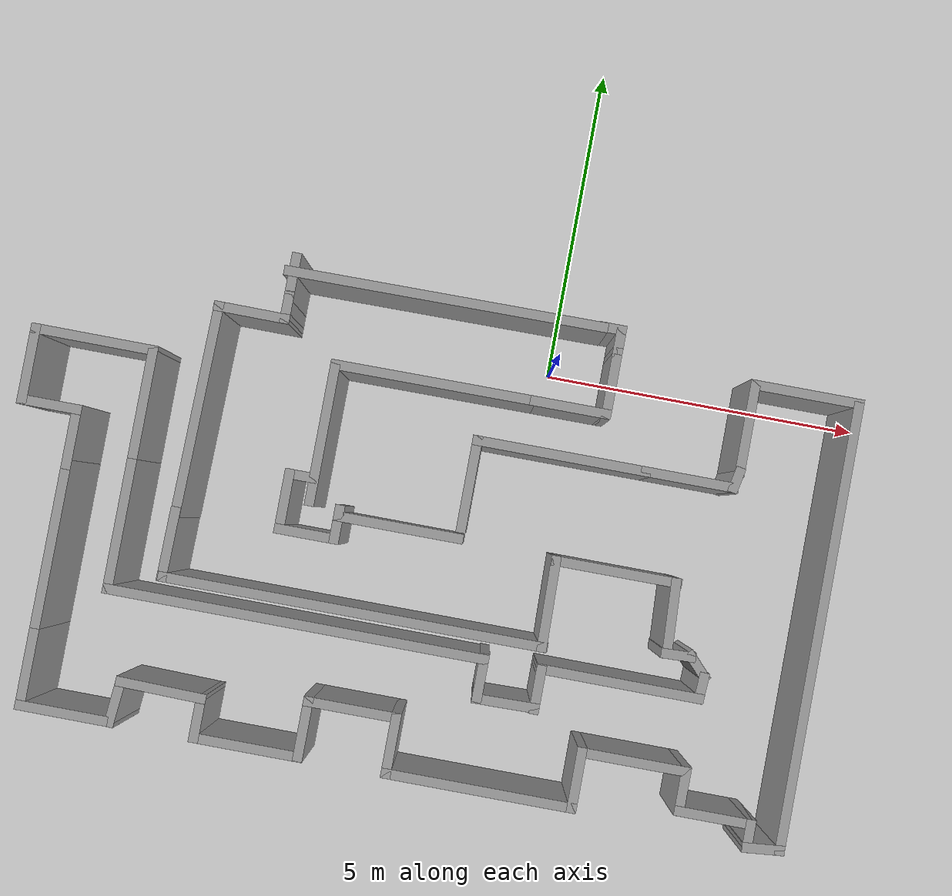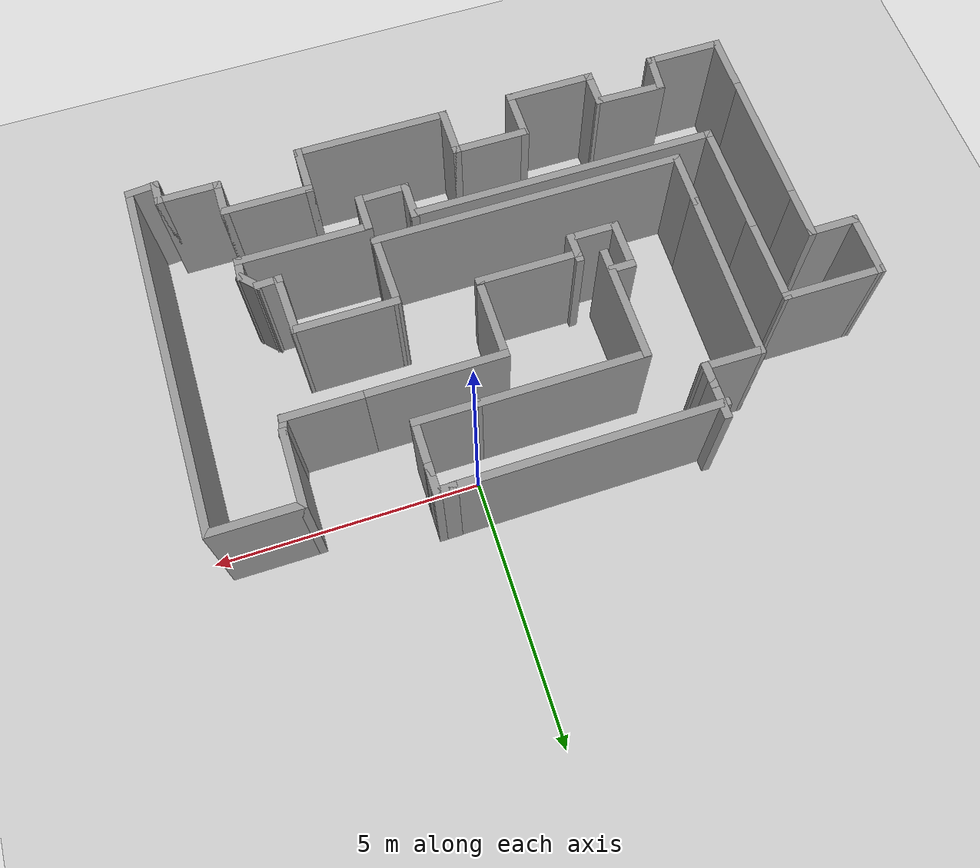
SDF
<?xml version="1.0"?>
<sdf version="1.5">
  <world name="default">
    <!-- A global light source -->
    <include>
      <uri>model://sun</uri>
    </include>
    <!-- A ground plane -->
    <include>
      <uri>model://ground_plane</uri>
    </include>

    <model name='Labyrinth'>
      <pose frame=''>-1.59153 -2.84142 0 0 -0 0</pose>
      <link name='Wall_0'>
        <collision name='Wall_0_Collision'>
          <geometry>
            <box>
              <size>1.25 0.15 2.5</size>
            </box>
          </geometry>
          <pose frame=''>0 0 1.25 0 -0 0</pose>
        </collision>
        <visual name='Wall_0_Visual'>
          <pose frame=''>0 0 1.25 0 -0 0</pose>
          <geometry>
            <box>
              <size>1.25 0.15 2.5</size>
            </box>
          </geometry>
          <material>
            <script>
              <uri>file://media/materials/scripts/gazebo.material</uri>
              <name>Gazebo/Grey</name>
            </script>
            <ambient>1 1 1 1</ambient>
          </material>
        </visual>
        <pose frame=''>1.95595 2.28277 0 0 -0 0</pose>
      </link>
      <link name='Wall_1'>
        <collision name='Wall_1_Collision'>
          <geometry>
            <box>
              <size>1 0.15 2.5</size>
            </box>
          </geometry>
          <pose frame=''>0 0 1.25 0 -0 0</pose>
        </collision>
        <visual name='Wall_1_Visual'>
          <pose frame=''>0 0 1.25 0 -0 0</pose>
          <geometry>
            <box>
              <size>1 0.15 2.5</size>
            </box>
          </geometry>
          <material>
            <script>
              <uri>file://media/materials/scripts/gazebo.material</uri>
              <name>Gazebo/Grey</name>
            </script>
            <ambient>1 1 1 1</ambient>
          </material>
        </visual>
        <pose frame=''>2.50595 2.70777 0 0 -0 1.5708</pose>
      </link>
      <link name='Wall_102'>
        <collision name='Wall_102_Collision'>
          <geometry>
            <box>
              <size>3.34002 0.15 2.5</size>
            </box>
          </geometry>
          <pose frame=''>0 0 1.25 0 -0 0</pose>
        </collision>
        <visual name='Wall_102_Visual'>
          <pose frame=''>0 0 1.25 0 -0 0</pose>
          <geometry>
            <box>
              <size>3.34002 0.15 2.5</size>
            </box>
          </geometry>
          <material>
            <script>
              <uri>file://media/materials/scripts/gazebo.material</uri>
              <name>Gazebo/Grey</name>
            </script>
            <ambient>1 1 1 1</ambient>
          </material>
        </visual>
        <pose frame=''>-3.61574 1.2323 0 0 -0 1.55168</pose>
      </link>
      <link name='Wall_105'>
        <collision name='Wall_105_Collision'>
          <geometry>
            <box>
              <size>0.75 0.15 2.5</size>
            </box>
          </geometry>
          <pose frame=''>0 0 1.25 0 -0 0</pose>
        </collision>
        <visual name='Wall_105_Visual'>
          <pose frame=''>0 0 1.25 0 -0 0</pose>
          <geometry>
            <box>
              <size>0.75 0.15 2.5</size>
            </box>
          </geometry>
          <material>
            <script>
              <uri>file://media/materials/scripts/gazebo.material</uri>
              <name>Gazebo/Grey</name>
            </script>
            <ambient>1 1 1 1</ambient>
          </material>
        </visual>
        <pose frame=''>-2.56458 3.47044 0 0 -0 1.5708</pose>
      </link>
      <link name='Wall_13'>
        <collision name='Wall_13_Collision'>
          <geometry>
            <box>
              <size>3.23375 0.15 2.5</size>
            </box>
          </geometry>
          <pose frame=''>0 0 1.25 0 -0 0</pose>
        </collision>
        <visual name='Wall_13_Visual'>
          <pose frame=''>0 0 1.25 0 -0 0</pose>
          <geometry>
            <box>
              <size>3.23375 0.15 2.5</size>
            </box>
          </geometry>
          <material>
            <script>
              <uri>file://media/materials/scripts/gazebo.material</uri>
              <name>Gazebo/Grey</name>
            </script>
            <ambient>1 1 1 1</ambient>
          </material>
        </visual>
        <pose frame=''>-0.135921 2.2788 0 0 0 -3.13902</pose>
      </link>
      <link name='Wall_14'>
        <collision name='Wall_14_Collision'>
          <geometry>
            <box>
              <size>2.25 0.15 2.5</size>
            </box>
          </geometry>
          <pose frame=''>0 0 1.25 0 -0 0</pose>
        </collision>
        <visual name='Wall_14_Visual'>
          <pose frame=''>0 0 1.25 0 -0 0</pose>
          <geometry>
            <box>
              <size>2.25 0.15 2.5</size>
            </box>
          </geometry>
          <material>
            <script>
              <uri>file://media/materials/scripts/gazebo.material</uri>
              <name>Gazebo/Grey</name>
            </script>
            <ambient>1 1 1 1</ambient>
          </material>
        </visual>
        <pose frame=''>-1.67779 1.21613 0 0 0 -1.5708</pose>
      </link>
      <link name='Wall_17'>
        <collision name='Wall_17_Collision'>
          <geometry>
            <box>
              <size>1.5 0.15 2.5</size>
            </box>
          </geometry>
          <pose frame=''>0 0 1.25 0 -0 0</pose>
        </collision>
        <visual name='Wall_17_Visual'>
          <pose frame=''>0 0 1.25 0 -0 0</pose>
          <geometry>
            <box>
              <size>1.5 0.15 2.5</size>
            </box>
          </geometry>
          <material>
            <script>
              <uri>file://media/materials/scripts/gazebo.material</uri>
              <name>Gazebo/Grey</name>
            </script>
            <ambient>1 1 1 1</ambient>
          </material>
        </visual>
        <pose frame=''>4.65595 2.45777 0 0 -0 1.5708</pose>
      </link>
      <link name='Wall_18'>
        <collision name='Wall_18_Collision'>
          <geometry>
            <box>
              <size>1.75 0.15 2.5</size>
            </box>
          </geometry>
          <pose frame=''>0 0 1.25 0 -0 0</pose>
        </collision>
        <visual name='Wall_18_Visual'>
          <pose frame=''>0 0 1.25 0 -0 0</pose>
          <geometry>
            <box>
              <size>1.75 0.15 2.5</size>
            </box>
          </geometry>
          <material>
            <script>
              <uri>file://media/materials/scripts/gazebo.material</uri>
              <name>Gazebo/Grey</name>
            </script>
            <ambient>1 1 1 1</ambient>
          </material>
        </visual>
        <pose frame=''>5.45595 3.13277 0 0 -0 0</pose>
      </link>
      <link name='Wall_2'>
        <collision name='Wall_2_Collision'>
          <geometry>
            <box>
              <size>0.25 0.15 2.5</size>
            </box>
          </geometry>
          <pose frame=''>0 0 1.25 0 -0 0</pose>
        </collision>
        <visual name='Wall_2_Visual'>
          <pose frame=''>0 0 1.25 0 -0 0</pose>
          <geometry>
            <box>
              <size>0.25 0.15 2.5</size>
            </box>
          </geometry>
          <material>
            <script>
              <uri>file://media/materials/scripts/gazebo.material</uri>
              <name>Gazebo/Grey</name>
            </script>
            <ambient>1 1 1 1</ambient>
          </material>
        </visual>
        <pose frame=''>2.50595 3.18277 0 0 -0 1.5708</pose>
      </link>
      <link name='Wall_20'>
        <collision name='Wall_20_Collision'>
          <geometry>
            <box>
              <size>7 0.15 2.5</size>
            </box>
          </geometry>
          <pose frame=''>0 0 1.25 0 -0 0</pose>
        </collision>
        <visual name='Wall_20_Visual'>
          <pose frame=''>0 0 1.25 0 -0 0</pose>
          <geometry>
            <box>
              <size>7 0.15 2.5</size>
            </box>
          </geometry>
          <material>
            <script>
              <uri>file://media/materials/scripts/gazebo.material</uri>
              <name>Gazebo/Grey</name>
            </script>
            <ambient>1 1 1 1</ambient>
          </material>
        </visual>
        <pose frame=''>6.25595 -0.292234 0 0 0 -1.5708</pose>
      </link>
      <link name='Wall_24'>
        <collision name='Wall_24_Collision'>
          <geometry>
            <box>
              <size>0.476204 0.15 2.5</size>
            </box>
          </geometry>
          <pose frame=''>0 0 1.25 0 -0 0</pose>
        </collision>
        <visual name='Wall_24_Visual'>
          <pose frame=''>0 0 1.25 0 -0 0</pose>
          <geometry>
            <box>
              <size>0.476204 0.15 2.5</size>
            </box>
          </geometry>
          <material>
            <script>
              <uri>file://media/materials/scripts/gazebo.material</uri>
              <name>Gazebo/Grey</name>
            </script>
            <ambient>1 1 1 1</ambient>
          </material>
        </visual>
        <pose frame=''>4.6647 -1.53437 0 0 0 -1.62444</pose>
      </link>
      <link name='Wall_26'>
        <collision name='Wall_26_Collision'>
          <geometry>
            <box>
              <size>2.23 0.15 2.5</size>
            </box>
          </geometry>
          <pose frame=''>0 0 1.25 0 -0 0</pose>
        </collision>
        <visual name='Wall_26_Visual'>
          <pose frame=''>0 0 1.25 0 -0 0</pose>
          <geometry>
            <box>
              <size>2.23 0.15 2.5</size>
            </box>
          </geometry>
          <material>
            <script>
              <uri>file://media/materials/scripts/gazebo.material</uri>
              <name>Gazebo/Grey</name>
            </script>
            <ambient>1 1 1 1</ambient>
          </material>
        </visual>
        <pose frame=''>-4.44405 -0.657234 0 0 -0 1.5708</pose>
      </link>
      <link name='Wall_27'>
        <collision name='Wall_27_Collision'>
          <geometry>
            <box>
              <size>1.75 0.15 2.5</size>
            </box>
          </geometry>
          <pose frame=''>0 0 1.25 0 -0 0</pose>
        </collision>
        <visual name='Wall_27_Visual'>
          <pose frame=''>0 0 1.25 0 -0 0</pose>
          <geometry>
            <box>
              <size>1.75 0.15 2.5</size>
            </box>
          </geometry>
          <material>
            <script>
              <uri>file://media/materials/scripts/gazebo.material</uri>
              <name>Gazebo/Grey</name>
            </script>
            <ambient>1 1 1 1</ambient>
          </material>
        </visual>
        <pose frame=''>-4.44405 1.18277 0 0 -0 1.5708</pose>
      </link>
      <link name='Wall_28'>
        <collision name='Wall_28_Collision'>
          <geometry>
            <box>
              <size>1.96833 0.15 2.5</size>
            </box>
          </geometry>
          <pose frame=''>0 0 1.25 0 -0 0</pose>
        </collision>
        <visual name='Wall_28_Visual'>
          <pose frame=''>0 0 1.25 0 -0 0</pose>
          <geometry>
            <box>
              <size>1.96833 0.15 2.5</size>
            </box>
          </geometry>
          <material>
            <script>
              <uri>file://media/materials/scripts/gazebo.material</uri>
              <name>Gazebo/Grey</name>
            </script>
            <ambient>1 1 1 1</ambient>
          </material>
        </visual>
        <pose frame=''>-5.35321 1.9861 0 0 -0 3.13792</pose>
      </link>
      <link name='Wall_3'>
        <collision name='Wall_3_Collision'>
          <geometry>
            <box>
              <size>0.5 0.15 2.5</size>
            </box>
          </geometry>
          <pose frame=''>0 0 1.25 0 -0 0</pose>
        </collision>
        <visual name='Wall_3_Visual'>
          <pose frame=''>0 0 1.25 0 -0 0</pose>
          <geometry>
            <box>
              <size>0.5 0.15 2.5</size>
            </box>
          </geometry>
          <material>
            <script>
              <uri>file://media/materials/scripts/gazebo.material</uri>
              <name>Gazebo/Grey</name>
            </script>
            <ambient>1 1 1 1</ambient>
          </material>
        </visual>
        <pose frame=''>2.50595 3.40777 0 0 -0 1.5708</pose>
      </link>
      <link name='Wall_34'>
        <collision name='Wall_34_Collision'>
          <geometry>
            <box>
              <size>1.5 0.15 2.5</size>
            </box>
          </geometry>
          <pose frame=''>0 0 1.25 0 -0 0</pose>
        </collision>
        <visual name='Wall_34_Visual'>
          <pose frame=''>0 0 1.25 0 -0 0</pose>
          <geometry>
            <box>
              <size>1.5 0.15 2.5</size>
            </box>
          </geometry>
          <material>
            <script>
              <uri>file://media/materials/scripts/gazebo.material</uri>
              <name>Gazebo/Grey</name>
            </script>
            <ambient>1 1 1 1</ambient>
          </material>
        </visual>
        <pose frame=''>0.655951 0.857766 0 0 -0 1.5708</pose>
      </link>
      <link name='Wall_35'>
        <collision name='Wall_35_Collision'>
          <geometry>
            <box>
              <size>2.75 0.15 2.5</size>
            </box>
          </geometry>
          <pose frame=''>0 0 1.25 0 -0 0</pose>
        </collision>
        <visual name='Wall_35_Visual'>
          <pose frame=''>0 0 1.25 0 -0 0</pose>
          <geometry>
            <box>
              <size>2.75 0.15 2.5</size>
            </box>
          </geometry>
          <material>
            <script>
              <uri>file://media/materials/scripts/gazebo.material</uri>
              <name>Gazebo/Grey</name>
            </script>
            <ambient>1 1 1 1</ambient>
          </material>
        </visual>
        <pose frame=''>1.95595 1.53277 0 0 -0 0</pose>
      </link>
      <link name='Wall_36'>
        <collision name='Wall_36_Collision'>
          <geometry>
            <box>
              <size>1.5 0.15 2.5</size>
            </box>
          </geometry>
          <pose frame=''>0 0 1.25 0 -0 0</pose>
        </collision>
        <visual name='Wall_36_Visual'>
          <pose frame=''>0 0 1.25 0 -0 0</pose>
          <geometry>
            <box>
              <size>1.5 0.15 2.5</size>
            </box>
          </geometry>
          <material>
            <script>
              <uri>file://media/materials/scripts/gazebo.material</uri>
              <name>Gazebo/Grey</name>
            </script>
            <ambient>1 1 1 1</ambient>
          </material>
        </visual>
        <pose frame=''>3.93095 1.53277 0 0 -0 0</pose>
      </link>
      <link name='Wall_38'>
        <collision name='Wall_38_Collision'>
          <geometry>
            <box>
              <size>0.404951 0.15 2.5</size>
            </box>
          </geometry>
          <pose frame=''>0 0 1.25 0 -0 0</pose>
        </collision>
        <visual name='Wall_38_Visual'>
          <pose frame=''>0 0 1.25 0 -0 0</pose>
          <geometry>
            <box>
              <size>0.404951 0.15 2.5</size>
            </box>
          </geometry>
          <material>
            <script>
              <uri>file://media/materials/scripts/gazebo.material</uri>
              <name>Gazebo/Grey</name>
            </script>
            <ambient>1 1 1 1</ambient>
          </material>
        </visual>
        <pose frame=''>4.63095 1.65777 0 0 0 -1.76819</pose>
      </link>
      <link name='Wall_4'>
        <collision name='Wall_4_Collision'>
          <geometry>
            <box>
              <size>0.433486 0.15 2.5</size>
            </box>
          </geometry>
          <pose frame=''>0 0 1.25 0 -0 0</pose>
        </collision>
        <visual name='Wall_4_Visual'>
          <pose frame=''>0 0 1.25 0 -0 0</pose>
          <geometry>
            <box>
              <size>0.433486 0.15 2.5</size>
            </box>
          </geometry>
          <material>
            <script>
              <uri>file://media/materials/scripts/gazebo.material</uri>
              <name>Gazebo/Grey</name>
            </script>
            <ambient>1 1 1 1</ambient>
          </material>
        </visual>
        <pose frame=''>2.36455 3.58277 0 0 -0 3.14159</pose>
      </link>
      <link name='Wall_40'>
        <collision name='Wall_40_Collision'>
          <geometry>
            <box>
              <size>6 0.15 2.5</size>
            </box>
          </geometry>
          <pose frame=''>0 0 1.25 0 -0 0</pose>
        </collision>
        <visual name='Wall_40_Visual'>
          <pose frame=''>0 0 1.25 0 -0 0</pose>
          <geometry>
            <box>
              <size>6 0.15 2.5</size>
            </box>
          </geometry>
          <material>
            <script>
              <uri>file://media/materials/scripts/gazebo.material</uri>
              <name>Gazebo/Grey</name>
            </script>
            <ambient>1 1 1 1</ambient>
          </material>
        </visual>
        <pose frame=''>-0.730649 -1.36723 0 0 -0 0</pose>
      </link>
      <link name='Wall_41'>
        <collision name='Wall_41_Collision'>
          <geometry>
            <box>
              <size>1.47381 0.15 2.5</size>
            </box>
          </geometry>
          <pose frame=''>0 0 1.25 0 -0 0</pose>
        </collision>
        <visual name='Wall_41_Visual'>
          <pose frame=''>0 0 1.25 0 -0 0</pose>
          <geometry>
            <box>
              <size>1.47381 0.15 2.5</size>
            </box>
          </geometry>
          <material>
            <script>
              <uri>file://media/materials/scripts/gazebo.material</uri>
              <name>Gazebo/Grey</name>
            </script>
            <ambient>1 1 1 1</ambient>
          </material>
        </visual>
        <pose frame=''>2.1679 -0.705459 0 0 -0 1.59078</pose>
      </link>
      <link name='Wall_42'>
        <collision name='Wall_42_Collision'>
          <geometry>
            <box>
              <size>2 0.15 2.5</size>
            </box>
          </geometry>
          <pose frame=''>0 0 1.25 0 -0 0</pose>
        </collision>
        <visual name='Wall_42_Visual'>
          <pose frame=''>0 0 1.25 0 -0 0</pose>
          <geometry>
            <box>
              <size>2 0.15 2.5</size>
            </box>
          </geometry>
          <material>
            <script>
              <uri>file://media/materials/scripts/gazebo.material</uri>
              <name>Gazebo/Grey</name>
            </script>
            <ambient>1 1 1 1</ambient>
          </material>
        </visual>
        <pose frame=''>3.0929 -0.043684 0 0 -0 0</pose>
      </link>
      <link name='Wall_43'>
        <collision name='Wall_43_Collision'>
          <geometry>
            <box>
              <size>1.22428 0.15 2.5</size>
            </box>
          </geometry>
          <pose frame=''>0 0 1.25 0 -0 0</pose>
        </collision>
        <visual name='Wall_43_Visual'>
          <pose frame=''>0 0 1.25 0 -0 0</pose>
          <geometry>
            <box>
              <size>1.22428 0.15 2.5</size>
            </box>
          </geometry>
          <material>
            <script>
              <uri>file://media/materials/scripts/gazebo.material</uri>
              <name>Gazebo/Grey</name>
            </script>
            <ambient>1 1 1 1</ambient>
          </material>
        </visual>
        <pose frame=''>4.03113 -0.580459 0 0 0 -1.52156</pose>
      </link>
      <link name='Wall_44'>
        <collision name='Wall_44_Collision'>
          <geometry>
            <box>
              <size>0.531633 0.15 2.5</size>
            </box>
          </geometry>
          <pose frame=''>0 0 1.25 0 -0 0</pose>
        </collision>
        <visual name='Wall_44_Visual'>
          <pose frame=''>0 0 1.25 0 -0 0</pose>
          <geometry>
            <box>
              <size>0.531633 0.15 2.5</size>
            </box>
          </geometry>
          <material>
            <script>
              <uri>file://media/materials/scripts/gazebo.material</uri>
              <name>Gazebo/Grey</name>
            </script>
            <ambient>1 1 1 1</ambient>
          </material>
        </visual>
        <pose frame=''>4.23471 -1.11062 0 0 -0 0.034723</pose>
      </link>
      <link name='Wall_45'>
        <collision name='Wall_45_Collision'>
          <geometry>
            <box>
              <size>0.515022 0.15 2.5</size>
            </box>
          </geometry>
          <pose frame=''>0 0 1.25 0 -0 0</pose>
        </collision>
        <visual name='Wall_45_Visual'>
          <pose frame=''>0 0 1.25 0 -0 0</pose>
          <geometry>
            <box>
              <size>0.515022 0.15 2.5</size>
            </box>
          </geometry>
          <material>
            <script>
              <uri>file://media/materials/scripts/gazebo.material</uri>
              <name>Gazebo/Grey</name>
            </script>
            <ambient>1 1 1 1</ambient>
          </material>
        </visual>
        <pose frame=''>4.54925 -1.22453 0 0 0 -0.822436</pose>
      </link>
      <link name='Wall_49'>
        <collision name='Wall_49_Collision'>
          <geometry>
            <box>
              <size>0.752354 0.15 2.5</size>
            </box>
          </geometry>
          <pose frame=''>0 0 1.25 0 -0 0</pose>
        </collision>
        <visual name='Wall_49_Visual'>
          <pose frame=''>0 0 1.25 0 -0 0</pose>
          <geometry>
            <box>
              <size>0.752354 0.15 2.5</size>
            </box>
          </geometry>
          <material>
            <script>
              <uri>file://media/materials/scripts/gazebo.material</uri>
              <name>Gazebo/Grey</name>
            </script>
            <ambient>1 1 1 1</ambient>
          </material>
        </visual>
        <pose frame=''>-4.00944 -3.36376 0 0 -0 1.48236</pose>
      </link>
      <link name='Wall_5'>
        <collision name='Wall_5_Collision'>
          <geometry>
            <box>
              <size>5.01155 0.15 2.5</size>
            </box>
          </geometry>
          <pose frame=''>0 0 1.25 0 -0 0</pose>
        </collision>
        <visual name='Wall_5_Visual'>
          <pose frame=''>0 0 1.25 0 -0 0</pose>
          <geometry>
            <box>
              <size>5.01155 0.15 2.5</size>
            </box>
          </geometry>
          <material>
            <script>
              <uri>file://media/materials/scripts/gazebo.material</uri>
              <name>Gazebo/Grey</name>
            </script>
            <ambient>1 1 1 1</ambient>
          </material>
        </visual>
        <pose frame=''>-0.207598 3.56469 0 0 0 -3.13686</pose>
      </link>
      <link name='Wall_50'>
        <collision name='Wall_50_Collision'>
          <geometry>
            <box>
              <size>1.39388 0.15 2.5</size>
            </box>
          </geometry>
          <pose frame=''>0 0 1.25 0 -0 0</pose>
        </collision>
        <visual name='Wall_50_Visual'>
          <pose frame=''>0 0 1.25 0 -0 0</pose>
          <geometry>
            <box>
              <size>1.39388 0.15 2.5</size>
            </box>
          </geometry>
          <material>
            <script>
              <uri>file://media/materials/scripts/gazebo.material</uri>
              <name>Gazebo/Grey</name>
            </script>
            <ambient>1 1 1 1</ambient>
          </material>
        </visual>
        <pose frame=''>-3.36104 -3.05046 0 0 0 -0.021386</pose>
      </link>
      <link name='Wall_53'>
        <collision name='Wall_53_Collision'>
          <geometry>
            <box>
              <size>0.75 0.15 2.5</size>
            </box>
          </geometry>
          <pose frame=''>0 0 1.25 0 -0 0</pose>
        </collision>
        <visual name='Wall_53_Visual'>
          <pose frame=''>0 0 1.25 0 -0 0</pose>
          <geometry>
            <box>
              <size>0.75 0.15 2.5</size>
            </box>
          </geometry>
          <material>
            <script>
              <uri>file://media/materials/scripts/gazebo.material</uri>
              <name>Gazebo/Grey</name>
            </script>
            <ambient>1 1 1 1</ambient>
          </material>
        </visual>
        <pose frame=''>-2.73924 -3.36376 0 0 0 -1.5708</pose>
      </link>
      <link name='Wall_54'>
        <collision name='Wall_54_Collision'>
          <geometry>
            <box>
              <size>1.75 0.15 2.5</size>
            </box>
          </geometry>
          <pose frame=''>0 0 1.25 0 -0 0</pose>
        </collision>
        <visual name='Wall_54_Visual'>
          <pose frame=''>0 0 1.25 0 -0 0</pose>
          <geometry>
            <box>
              <size>1.75 0.15 2.5</size>
            </box>
          </geometry>
          <material>
            <script>
              <uri>file://media/materials/scripts/gazebo.material</uri>
              <name>Gazebo/Grey</name>
            </script>
            <ambient>1 1 1 1</ambient>
          </material>
        </visual>
        <pose frame=''>-1.93924 -3.66376 0 0 -0 0</pose>
      </link>
      <link name='Wall_55'>
        <collision name='Wall_55_Collision'>
          <geometry>
            <box>
              <size>1 0.15 2.5</size>
            </box>
          </geometry>
          <pose frame=''>0 0 1.25 0 -0 0</pose>
        </collision>
        <visual name='Wall_55_Visual'>
          <pose frame=''>0 0 1.25 0 -0 0</pose>
          <geometry>
            <box>
              <size>1 0.15 2.5</size>
            </box>
          </geometry>
          <material>
            <script>
              <uri>file://media/materials/scripts/gazebo.material</uri>
              <name>Gazebo/Grey</name>
            </script>
            <ambient>1 1 1 1</ambient>
          </material>
        </visual>
        <pose frame=''>-1.13924 -3.23876 0 0 -0 1.5708</pose>
      </link>
      <link name='Wall_56'>
        <collision name='Wall_56_Collision'>
          <geometry>
            <box>
              <size>1.5 0.15 2.5</size>
            </box>
          </geometry>
          <pose frame=''>0 0 1.25 0 -0 0</pose>
        </collision>
        <visual name='Wall_56_Visual'>
          <pose frame=''>0 0 1.25 0 -0 0</pose>
          <geometry>
            <box>
              <size>1.5 0.15 2.5</size>
            </box>
          </geometry>
          <material>
            <script>
              <uri>file://media/materials/scripts/gazebo.material</uri>
              <name>Gazebo/Grey</name>
            </script>
            <ambient>1 1 1 1</ambient>
          </material>
        </visual>
        <pose frame=''>-0.464238 -2.81376 0 0 -0 0</pose>
      </link>
      <link name='Wall_57'>
        <collision name='Wall_57_Collision'>
          <geometry>
            <box>
              <size>1 0.15 2.5</size>
            </box>
          </geometry>
          <pose frame=''>0 0 1.25 0 -0 0</pose>
        </collision>
        <visual name='Wall_57_Visual'>
          <pose frame=''>0 0 1.25 0 -0 0</pose>
          <geometry>
            <box>
              <size>1 0.15 2.5</size>
            </box>
          </geometry>
          <material>
            <script>
              <uri>file://media/materials/scripts/gazebo.material</uri>
              <name>Gazebo/Grey</name>
            </script>
            <ambient>1 1 1 1</ambient>
          </material>
        </visual>
        <pose frame=''>0.210762 -3.23876 0 0 0 -1.5708</pose>
      </link>
      <link name='Wall_58'>
        <collision name='Wall_58_Collision'>
          <geometry>
            <box>
              <size>3 0.15 2.5</size>
            </box>
          </geometry>
          <pose frame=''>0 0 1.25 0 -0 0</pose>
        </collision>
        <visual name='Wall_58_Visual'>
          <pose frame=''>0 0 1.25 0 -0 0</pose>
          <geometry>
            <box>
              <size>3 0.15 2.5</size>
            </box>
          </geometry>
          <material>
            <script>
              <uri>file://media/materials/scripts/gazebo.material</uri>
              <name>Gazebo/Grey</name>
            </script>
            <ambient>1 1 1 1</ambient>
          </material>
        </visual>
        <pose frame=''>1.63576 -3.66376 0 0 -0 0</pose>
      </link>
      <link name='Wall_59'>
        <collision name='Wall_59_Collision'>
          <geometry>
            <box>
              <size>1 0.15 2.5</size>
            </box>
          </geometry>
          <pose frame=''>0 0 1.25 0 -0 0</pose>
        </collision>
        <visual name='Wall_59_Visual'>
          <pose frame=''>0 0 1.25 0 -0 0</pose>
          <geometry>
            <box>
              <size>1 0.15 2.5</size>
            </box>
          </geometry>
          <material>
            <script>
              <uri>file://media/materials/scripts/gazebo.material</uri>
              <name>Gazebo/Grey</name>
            </script>
            <ambient>1 1 1 1</ambient>
          </material>
        </visual>
        <pose frame=''>3.06076 -3.23876 0 0 -0 1.5708</pose>
      </link>
      <link name='Wall_60'>
        <collision name='Wall_60_Collision'>
          <geometry>
            <box>
              <size>1.75 0.15 2.5</size>
            </box>
          </geometry>
          <pose frame=''>0 0 1.25 0 -0 0</pose>
        </collision>
        <visual name='Wall_60_Visual'>
          <pose frame=''>0 0 1.25 0 -0 0</pose>
          <geometry>
            <box>
              <size>1.75 0.15 2.5</size>
            </box>
          </geometry>
          <material>
            <script>
              <uri>file://media/materials/scripts/gazebo.material</uri>
              <name>Gazebo/Grey</name>
            </script>
            <ambient>1 1 1 1</ambient>
          </material>
        </visual>
        <pose frame=''>3.86076 -2.81376 0 0 -0 0</pose>
      </link>
      <link name='Wall_61'>
        <collision name='Wall_61_Collision'>
          <geometry>
            <box>
              <size>0.75 0.15 2.5</size>
            </box>
          </geometry>
          <pose frame=''>0 0 1.25 0 -0 0</pose>
        </collision>
        <visual name='Wall_61_Visual'>
          <pose frame=''>0 0 1.25 0 -0 0</pose>
          <geometry>
            <box>
              <size>0.75 0.15 2.5</size>
            </box>
          </geometry>
          <material>
            <script>
              <uri>file://media/materials/scripts/gazebo.material</uri>
              <name>Gazebo/Grey</name>
            </script>
            <ambient>1 1 1 1</ambient>
          </material>
        </visual>
        <pose frame=''>4.66076 -3.11376 0 0 0 -1.5708</pose>
      </link>
      <link name='Wall_62'>
        <collision name='Wall_62_Collision'>
          <geometry>
            <box>
              <size>1.25 0.15 2.5</size>
            </box>
          </geometry>
          <pose frame=''>0 0 1.25 0 -0 0</pose>
        </collision>
        <visual name='Wall_62_Visual'>
          <pose frame=''>0 0 1.25 0 -0 0</pose>
          <geometry>
            <box>
              <size>1.25 0.15 2.5</size>
            </box>
          </geometry>
          <material>
            <script>
              <uri>file://media/materials/scripts/gazebo.material</uri>
              <name>Gazebo/Grey</name>
            </script>
            <ambient>1 1 1 1</ambient>
          </material>
        </visual>
        <pose frame=''>5.21076 -3.41376 0 0 -0 0</pose>
      </link>
      <link name='Wall_63'>
        <collision name='Wall_63_Collision'>
          <geometry>
            <box>
              <size>0.5 0.15 2.5</size>
            </box>
          </geometry>
          <pose frame=''>0 0 1.25 0 -0 0</pose>
        </collision>
        <visual name='Wall_63_Visual'>
          <pose frame=''>0 0 1.25 0 -0 0</pose>
          <geometry>
            <box>
              <size>0.5 0.15 2.5</size>
            </box>
          </geometry>
          <material>
            <script>
              <uri>file://media/materials/scripts/gazebo.material</uri>
              <name>Gazebo/Grey</name>
            </script>
            <ambient>1 1 1 1</ambient>
          </material>
        </visual>
        <pose frame=''>5.76076 -3.58876 0 0 0 -1.5708</pose>
      </link>
      <link name='Wall_64'>
        <collision name='Wall_64_Collision'>
          <geometry>
            <box>
              <size>0.64737 0.15 2.5</size>
            </box>
          </geometry>
          <pose frame=''>0 0 1.25 0 -0 0</pose>
        </collision>
        <visual name='Wall_64_Visual'>
          <pose frame=''>0 0 1.25 0 -0 0</pose>
          <geometry>
            <box>
              <size>0.64737 0.15 2.5</size>
            </box>
          </geometry>
          <material>
            <script>
              <uri>file://media/materials/scripts/gazebo.material</uri>
              <name>Gazebo/Grey</name>
            </script>
            <ambient>1 1 1 1</ambient>
          </material>
        </visual>
        <pose frame=''>6.00836 -3.7405 0 0 -0 0.093677</pose>
      </link>
      <link name='Wall_66'>
        <collision name='Wall_66_Collision'>
          <geometry>
            <box>
              <size>0.75 0.15 2.5</size>
            </box>
          </geometry>
          <pose frame=''>0 0 1.25 0 -0 0</pose>
        </collision>
        <visual name='Wall_66_Visual'>
          <pose frame=''>0 0 1.25 0 -0 0</pose>
          <geometry>
            <box>
              <size>0.75 0.15 2.5</size>
            </box>
          </geometry>
          <material>
            <script>
              <uri>file://media/materials/scripts/gazebo.material</uri>
              <name>Gazebo/Grey</name>
            </script>
            <ambient>1 1 1 1</ambient>
          </material>
        </visual>
        <pose frame=''>1.35609 -1.99138 0 0 0 -1.5708</pose>
      </link>
      <link name='Wall_67'>
        <collision name='Wall_67_Collision'>
          <geometry>
            <box>
              <size>1.03013 0.15 2.5</size>
            </box>
          </geometry>
          <pose frame=''>0 0 1.25 0 -0 0</pose>
        </collision>
        <visual name='Wall_67_Visual'>
          <pose frame=''>0 0 1.25 0 -0 0</pose>
          <geometry>
            <box>
              <size>1.03013 0.15 2.5</size>
            </box>
          </geometry>
          <material>
            <script>
              <uri>file://media/materials/scripts/gazebo.material</uri>
              <name>Gazebo/Grey</name>
            </script>
            <ambient>1 1 1 1</ambient>
          </material>
        </visual>
        <pose frame=''>1.79609 -2.29898 0 0 -0 0.017281</pose>
      </link>
      <link name='Wall_68'>
        <collision name='Wall_68_Collision'>
          <geometry>
            <box>
              <size>0.75 0.15 2.5</size>
            </box>
          </geometry>
          <pose frame=''>0 0 1.25 0 -0 0</pose>
        </collision>
        <visual name='Wall_68_Visual'>
          <pose frame=''>0 0 1.25 0 -0 0</pose>
          <geometry>
            <box>
              <size>0.75 0.15 2.5</size>
            </box>
          </geometry>
          <material>
            <script>
              <uri>file://media/materials/scripts/gazebo.material</uri>
              <name>Gazebo/Grey</name>
            </script>
            <ambient>1 1 1 1</ambient>
          </material>
        </visual>
        <pose frame=''>2.23609 -2.00659 0 0 -0 1.5708</pose>
      </link>
      <link name='Wall_7'>
        <collision name='Wall_7_Collision'>
          <geometry>
            <box>
              <size>1.15487 0.15 2.5</size>
            </box>
          </geometry>
          <pose frame=''>0 0 1.25 0 -0 0</pose>
        </collision>
        <visual name='Wall_7_Visual'>
          <pose frame=''>0 0 1.25 0 -0 0</pose>
          <geometry>
            <box>
              <size>1.15487 0.15 2.5</size>
            </box>
          </geometry>
          <material>
            <script>
              <uri>file://media/materials/scripts/gazebo.material</uri>
              <name>Gazebo/Grey</name>
            </script>
            <ambient>1 1 1 1</ambient>
          </material>
        </visual>
        <pose frame=''>-3.66084 -0.864826 0 0 0 -1.58679</pose>
      </link>
      <link name='Wall_70'>
        <collision name='Wall_70_Collision'>
          <geometry>
            <box>
              <size>5.95057 0.15 2.5</size>
            </box>
          </geometry>
          <pose frame=''>0 0 1.25 0 -0 0</pose>
        </collision>
        <visual name='Wall_70_Visual'>
          <pose frame=''>0 0 1.25 0 -0 0</pose>
          <geometry>
            <box>
              <size>5.95057 0.15 2.5</size>
            </box>
          </geometry>
          <material>
            <script>
              <uri>file://media/materials/scripts/gazebo.material</uri>
              <name>Gazebo/Grey</name>
            </script>
            <ambient>1 1 1 1</ambient>
          </material>
        </visual>
        <pose frame=''>-1.54398 -1.70191 0 0 0 -0.001613</pose>
      </link>
      <link name='Wall_72'>
        <collision name='Wall_72_Collision'>
          <geometry>
            <box>
              <size>2.56986 0.15 2.5</size>
            </box>
          </geometry>
          <pose frame=''>0 0 1.25 0 -0 0</pose>
        </collision>
        <visual name='Wall_72_Visual'>
          <pose frame=''>0 0 1.25 0 -0 0</pose>
          <geometry>
            <box>
              <size>2.56986 0.15 2.5</size>
            </box>
          </geometry>
          <material>
            <script>
              <uri>file://media/materials/scripts/gazebo.material</uri>
              <name>Gazebo/Grey</name>
            </script>
            <ambient>1 1 1 1</ambient>
          </material>
        </visual>
        <pose frame=''>3.44602 -1.69431 0 0 0 -0.002419</pose>
      </link>
      <link name='Wall_77'>
        <collision name='Wall_77_Collision'>
          <geometry>
            <box>
              <size>1.25 0.15 2.5</size>
            </box>
          </geometry>
          <pose frame=''>0 0 1.25 0 -0 0</pose>
        </collision>
        <visual name='Wall_77_Visual'>
          <pose frame=''>0 0 1.25 0 -0 0</pose>
          <geometry>
            <box>
              <size>1.25 0.15 2.5</size>
            </box>
          </geometry>
          <material>
            <script>
              <uri>file://media/materials/scripts/gazebo.material</uri>
              <name>Gazebo/Grey</name>
            </script>
            <ambient>1 1 1 1</ambient>
          </material>
        </visual>
        <pose frame=''>-6.26236 1.43944 0 0 0 -1.5708</pose>
      </link>
      <link name='Wall_78'>
        <collision name='Wall_78_Collision'>
          <geometry>
            <box>
              <size>1 0.15 2.5</size>
            </box>
          </geometry>
          <pose frame=''>0 0 1.25 0 -0 0</pose>
        </collision>
        <visual name='Wall_78_Visual'>
          <pose frame=''>0 0 1.25 0 -0 0</pose>
          <geometry>
            <box>
              <size>1 0.15 2.5</size>
            </box>
          </geometry>
          <material>
            <script>
              <uri>file://media/materials/scripts/gazebo.material</uri>
              <name>Gazebo/Grey</name>
            </script>
            <ambient>1 1 1 1</ambient>
          </material>
        </visual>
        <pose frame=''>-5.83736 0.889442 0 0 -0 0</pose>
      </link>
      <link name='Wall_79'>
        <collision name='Wall_79_Collision'>
          <geometry>
            <box>
              <size>1 0.15 2.5</size>
            </box>
          </geometry>
          <pose frame=''>0 0 1.25 0 -0 0</pose>
        </collision>
        <visual name='Wall_79_Visual'>
          <pose frame=''>0 0 1.25 0 -0 0</pose>
          <geometry>
            <box>
              <size>1 0.15 2.5</size>
            </box>
          </geometry>
          <material>
            <script>
              <uri>file://media/materials/scripts/gazebo.material</uri>
              <name>Gazebo/Grey</name>
            </script>
            <ambient>1 1 1 1</ambient>
          </material>
        </visual>
        <pose frame=''>-5.41236 0.464442 0 0 0 -1.5708</pose>
      </link>
      <link name='Wall_80'>
        <collision name='Wall_80_Collision'>
          <geometry>
            <box>
              <size>2.75 0.15 2.5</size>
            </box>
          </geometry>
          <pose frame=''>0 0 1.25 0 -0 0</pose>
        </collision>
        <visual name='Wall_80_Visual'>
          <pose frame=''>0 0 1.25 0 -0 0</pose>
          <geometry>
            <box>
              <size>2.75 0.15 2.5</size>
            </box>
          </geometry>
          <material>
            <script>
              <uri>file://media/materials/scripts/gazebo.material</uri>
              <name>Gazebo/Grey</name>
            </script>
            <ambient>1 1 1 1</ambient>
          </material>
        </visual>
        <pose frame=''>-5.41236 -1.26056 0 0 0 -1.5708</pose>
      </link>
      <link name='Wall_81'>
        <collision name='Wall_81_Collision'>
          <geometry>
            <box>
              <size>1.25 0.15 2.5</size>
            </box>
          </geometry>
          <pose frame=''>0 0 1.25 0 -0 0</pose>
        </collision>
        <visual name='Wall_81_Visual'>
          <pose frame=''>0 0 1.25 0 -0 0</pose>
          <geometry>
            <box>
              <size>1.25 0.15 2.5</size>
            </box>
          </geometry>
          <material>
            <script>
              <uri>file://media/materials/scripts/gazebo.material</uri>
              <name>Gazebo/Grey</name>
            </script>
            <ambient>1 1 1 1</ambient>
          </material>
        </visual>
        <pose frame=''>-5.41236 -3.11056 0 0 0 -1.5708</pose>
      </link>
      <link name='Wall_83'>
        <collision name='Wall_83_Collision'>
          <geometry>
            <box>
              <size>1.52633 0.15 2.5</size>
            </box>
          </geometry>
          <pose frame=''>0 0 1.25 0 -0 0</pose>
        </collision>
        <visual name='Wall_83_Visual'>
          <pose frame=''>0 0 1.25 0 -0 0</pose>
          <geometry>
            <box>
              <size>1.52633 0.15 2.5</size>
            </box>
          </geometry>
          <material>
            <script>
              <uri>file://media/materials/scripts/gazebo.material</uri>
              <name>Gazebo/Grey</name>
            </script>
            <ambient>1 1 1 1</ambient>
          </material>
        </visual>
        <pose frame=''>-4.7242 -3.66216 0 0 0 -0.002325</pose>
      </link>
      <link name='Wall_87'>
        <collision name='Wall_87_Collision'>
          <geometry>
            <box>
              <size>0.5 0.15 2.5</size>
            </box>
          </geometry>
          <pose frame=''>0 0 1.25 0 -0 0</pose>
        </collision>
        <visual name='Wall_87_Visual'>
          <pose frame=''>0 0 1.25 0 -0 0</pose>
          <geometry>
            <box>
              <size>0.5 0.15 2.5</size>
            </box>
          </geometry>
          <material>
            <script>
              <uri>file://media/materials/scripts/gazebo.material</uri>
              <name>Gazebo/Grey</name>
            </script>
            <ambient>1 1 1 1</ambient>
          </material>
        </visual>
        <pose frame=''>-1.88241 0.517389 0 0 -0 3.14159</pose>
      </link>
      <link name='Wall_88'>
        <collision name='Wall_88_Collision'>
          <geometry>
            <box>
              <size>1 0.15 2.5</size>
            </box>
          </geometry>
          <pose frame=''>0 0 1.25 0 -0 0</pose>
        </collision>
        <visual name='Wall_88_Visual'>
          <pose frame=''>0 0 1.25 0 -0 0</pose>
          <geometry>
            <box>
              <size>1 0.15 2.5</size>
            </box>
          </geometry>
          <material>
            <script>
              <uri>file://media/materials/scripts/gazebo.material</uri>
              <name>Gazebo/Grey</name>
            </script>
            <ambient>1 1 1 1</ambient>
          </material>
        </visual>
        <pose frame=''>-2.05741 0.092388 0 0 0 -1.5708</pose>
      </link>
      <link name='Wall_89'>
        <collision name='Wall_89_Collision'>
          <geometry>
            <box>
              <size>1 0.15 2.5</size>
            </box>
          </geometry>
          <pose frame=''>0 0 1.25 0 -0 0</pose>
        </collision>
        <visual name='Wall_89_Visual'>
          <pose frame=''>0 0 1.25 0 -0 0</pose>
          <geometry>
            <box>
              <size>1 0.15 2.5</size>
            </box>
          </geometry>
          <material>
            <script>
              <uri>file://media/materials/scripts/gazebo.material</uri>
              <name>Gazebo/Grey</name>
            </script>
            <ambient>1 1 1 1</ambient>
          </material>
        </visual>
        <pose frame=''>-1.63241 -0.332612 0 0 -0 0</pose>
      </link>
      <link name='Wall_90'>
        <collision name='Wall_90_Collision'>
          <geometry>
            <box>
              <size>0.5 0.15 2.5</size>
            </box>
          </geometry>
          <pose frame=''>0 0 1.25 0 -0 0</pose>
        </collision>
        <visual name='Wall_90_Visual'>
          <pose frame=''>0 0 1.25 0 -0 0</pose>
          <geometry>
            <box>
              <size>0.5 0.15 2.5</size>
            </box>
          </geometry>
          <material>
            <script>
              <uri>file://media/materials/scripts/gazebo.material</uri>
              <name>Gazebo/Grey</name>
            </script>
            <ambient>1 1 1 1</ambient>
          </material>
        </visual>
        <pose frame=''>-1.20741 -0.157612 0 0 -0 1.5708</pose>
      </link>
      <link name='Wall_91'>
        <collision name='Wall_91_Collision'>
          <geometry>
            <box>
              <size>0.25 0.15 2.5</size>
            </box>
          </geometry>
          <pose frame=''>0 0 1.25 0 -0 0</pose>
        </collision>
        <visual name='Wall_91_Visual'>
          <pose frame=''>0 0 1.25 0 -0 0</pose>
          <geometry>
            <box>
              <size>0.25 0.15 2.5</size>
            </box>
          </geometry>
          <material>
            <script>
              <uri>file://media/materials/scripts/gazebo.material</uri>
              <name>Gazebo/Grey</name>
            </script>
            <ambient>1 1 1 1</ambient>
          </material>
        </visual>
        <pose frame=''>-1.20741 0.067389 0 0 -0 1.5708</pose>
      </link>
      <link name='Wall_94'>
        <collision name='Wall_94_Collision'>
          <geometry>
            <box>
              <size>2 0.15 2.5</size>
            </box>
          </geometry>
          <pose frame=''>0 0 1.25 0 -0 0</pose>
        </collision>
        <visual name='Wall_94_Visual'>
          <pose frame=''>0 0 1.25 0 -0 0</pose>
          <geometry>
            <box>
              <size>2 0.15 2.5</size>
            </box>
          </geometry>
          <material>
            <script>
              <uri>file://media/materials/scripts/gazebo.material</uri>
              <name>Gazebo/Grey</name>
            </script>
            <ambient>1 1 1 1</ambient>
          </material>
        </visual>
        <pose frame=''>-0.282409 0.017389 0 0 -0 0</pose>
      </link>
      <link name='Wall_95'>
        <collision name='Wall_95_Collision'>
          <geometry>
            <box>
              <size>0.15 0.15 2.5</size>
            </box>
          </geometry>
          <pose frame=''>0 0 1.25 0 -0 0</pose>
        </collision>
        <visual name='Wall_95_Visual'>
          <pose frame=''>0 0 1.25 0 -0 0</pose>
          <geometry>
            <box>
              <size>0.15 0.15 2.5</size>
            </box>
          </geometry>
          <material>
            <script>
              <uri>file://media/materials/scripts/gazebo.material</uri>
              <name>Gazebo/Grey</name>
            </script>
            <ambient>1 1 1 1</ambient>
          </material>
        </visual>
        <pose frame=''>0.642591 0.017389 0 0 -0 0</pose>
      </link>
      <link name='Wall_97'>
        <collision name='Wall_97_Collision'>
          <geometry>
            <box>
              <size>1.17743 0.15 2.5</size>
            </box>
          </geometry>
          <pose frame=''>0 0 1.25 0 -0 0</pose>
        </collision>
        <visual name='Wall_97_Visual'>
          <pose frame=''>0 0 1.25 0 -0 0</pose>
          <geometry>
            <box>
              <size>1.17743 0.15 2.5</size>
            </box>
          </geometry>
          <material>
            <script>
              <uri>file://media/materials/scripts/gazebo.material</uri>
              <name>Gazebo/Grey</name>
            </script>
            <ambient>1 1 1 1</ambient>
          </material>
        </visual>
        <pose frame=''>-3.0782 2.82373 0 0 0 -0.006401</pose>
      </link>
      <link name='Wall_98'>
        <collision name='Wall_98_Collision'>
          <geometry>
            <box>
              <size>0.5 0.15 2.5</size>
            </box>
          </geometry>
          <pose frame=''>0 0 1.25 0 -0 0</pose>
        </collision>
        <visual name='Wall_98_Visual'>
          <pose frame=''>0 0 1.25 0 -0 0</pose>
          <geometry>
            <box>
              <size>0.5 0.15 2.5</size>
            </box>
          </geometry>
          <material>
            <script>
              <uri>file://media/materials/scripts/gazebo.material</uri>
              <name>Gazebo/Grey</name>
            </script>
            <ambient>1 1 1 1</ambient>
          </material>
        </visual>
        <pose frame=''>-2.56458 3.00202 0 0 -0 1.5708</pose>
      </link>
      <link name='Wall_99'>
        <collision name='Wall_99_Collision'>
          <geometry>
            <box>
              <size>0.15 0.15 2.5</size>
            </box>
          </geometry>
          <pose frame=''>0 0 1.25 0 -0 0</pose>
        </collision>
        <visual name='Wall_99_Visual'>
          <pose frame=''>0 0 1.25 0 -0 0</pose>
          <geometry>
            <box>
              <size>0.15 0.15 2.5</size>
            </box>
          </geometry>
          <material>
            <script>
              <uri>file://media/materials/scripts/gazebo.material</uri>
              <name>Gazebo/Grey</name>
            </script>
            <ambient>1 1 1 1</ambient>
          </material>
        </visual>
        <pose frame=''>-2.56458 3.17044 0 0 -0 0</pose>
      </link>
      <static>1</static>
    </model>
  </world>

</sdf>
